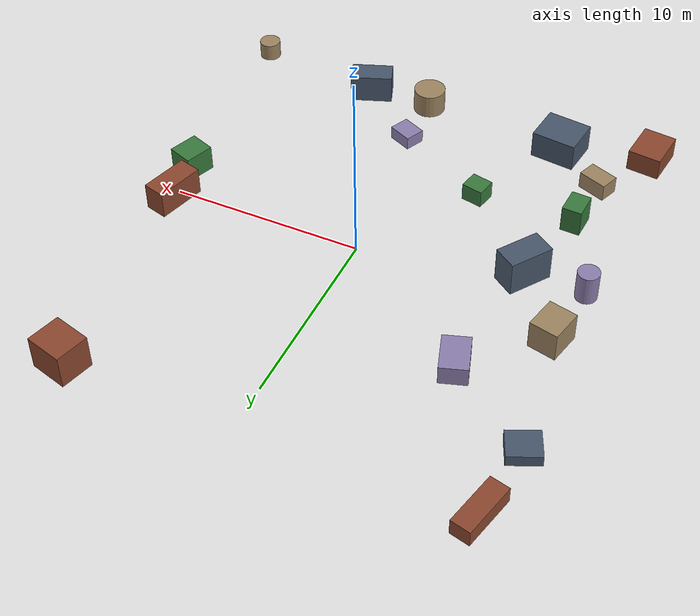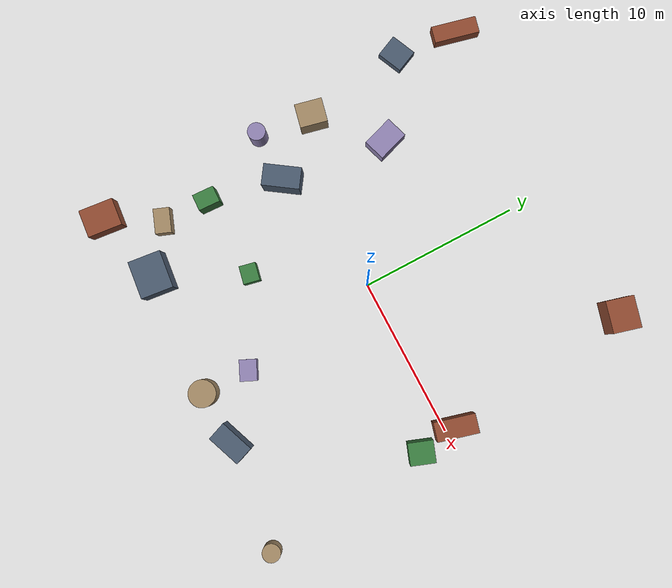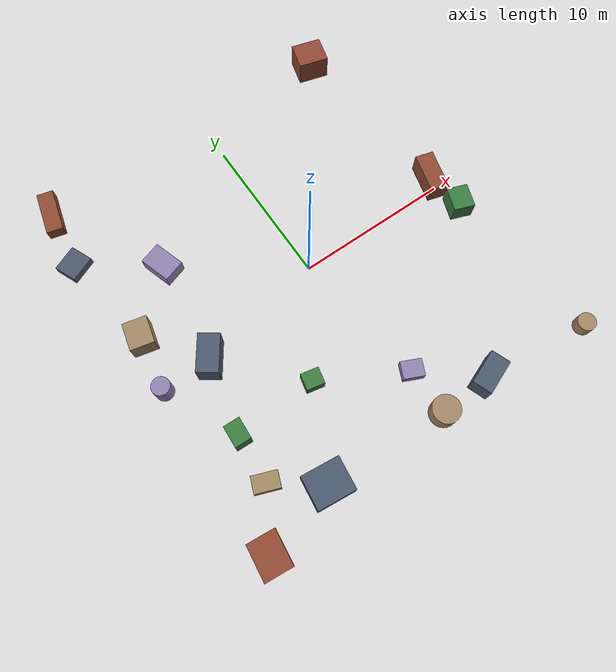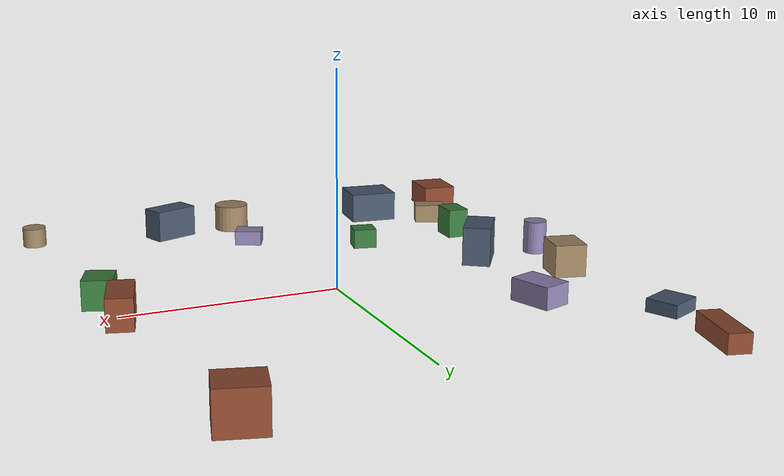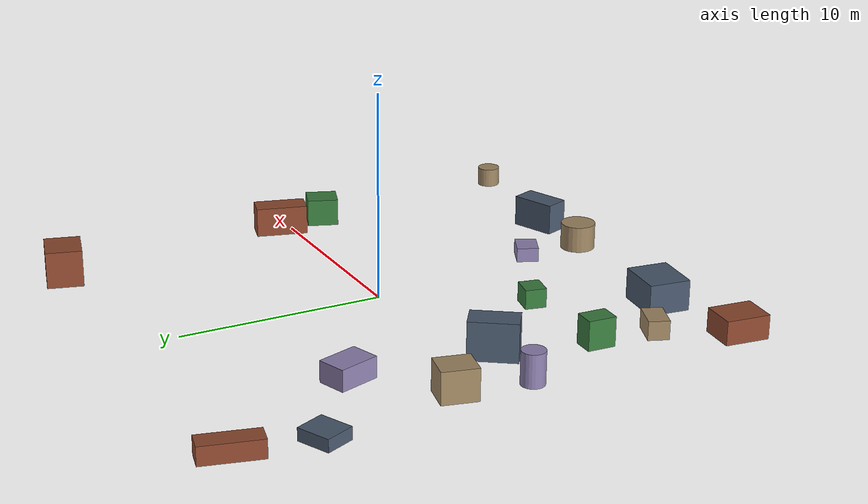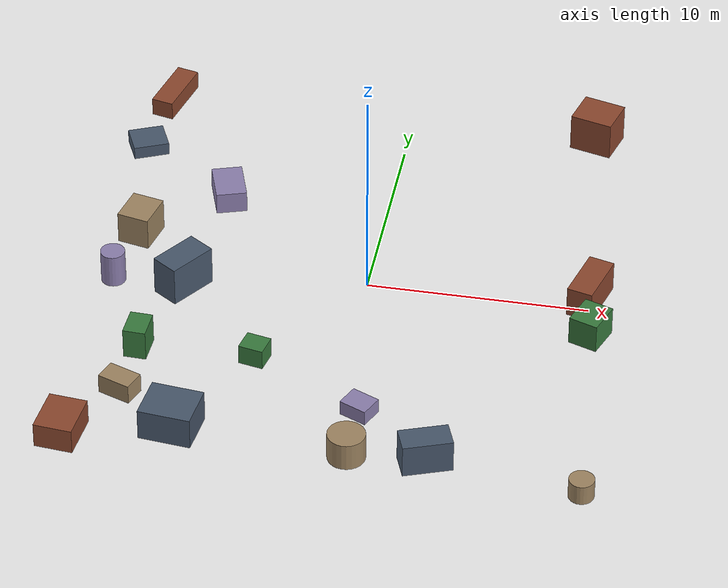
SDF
<sdf version="1.10">
 <world name="robotx_task1_uav_view">
  <gravity>0 0 -9.81</gravity>
  <physics name="physics" type="ode">
   <max_step_size>0.002</max_step_size>
   <real_time_factor>1.0</real_time_factor>
  </physics>
  <scene>
   <ambient>0.22 0.20 0.18 1.0</ambient>
   <background>0.74 0.55 0.44 1.0</background>
   <shadows>true</shadows>
   <grid>false</grid>
  </scene>
  <light name="sun" type="directional">
   <pose>0 0 300 0 0 0</pose>
   <diffuse>0.95 0.74 0.56 1.0</diffuse>
   <specular>1.00 0.87 0.71 1.0</specular>
   <direction>-0.40 0.20 -0.88</direction>
   <attenuation>
    <range>2500</range>
    <constant>0.85</constant>
    <linear>0.001</linear>
    <quadratic>0.00005</quadratic>
   </attenuation>
  </light>
  <plugin filename="gz-sim-physics-system" name="gz::sim::systems::Physics"/>
  <plugin filename="gz-sim-user-commands-system" name="gz::sim::systems::UserCommands"/>
  <plugin filename="gz-sim-scene-broadcaster-system" name="gz::sim::systems::SceneBroadcaster"/>
  <plugin filename="gz-sim-sensors-system" name="gz::sim::systems::Sensors">
   <render_engine>ogre2</render_engine>
  </plugin>
  <model name="scene_clutter_box_000">
   <static>true</static>
   <pose>-10.804 1.817 0.787 0 0 2.920331</pose>
   <link name="link">
    <visual name="v">
     <geometry><box><size>1.488 1.715 1.534</size></box></geometry>
     <material><ambient>0.45 0.38 0.32 1.0</ambient><diffuse>0.62 0.52 0.38 1.0</diffuse></material>
    </visual>
   </link>
  </model>
  <model name="scene_clutter_box_001">
   <static>true</static>
   <pose>-6.556 -11.242 0.762 0 0 1.457861</pose>
   <link name="link">
    <visual name="v">
     <geometry><box><size>2.021 2.357 1.484</size></box></geometry>
     <material><ambient>0.18 0.22 0.28 1.0</ambient><diffuse>0.28 0.34 0.42 1.0</diffuse></material>
    </visual>
   </link>
  </model>
  <model name="scene_clutter_box_002">
   <static>true</static>
   <pose>-11.134 -12.436 0.604 0 0 -1.673038</pose>
   <link name="link">
    <visual name="v">
     <geometry><box><size>2.149 1.725 1.168</size></box></geometry>
     <material><ambient>0.35 0.16 0.12 1.0</ambient><diffuse>0.55 0.28 0.18 1.0</diffuse></material>
    </visual>
   </link>
  </model>
  <model name="scene_clutter_box_003">
   <static>true</static>
   <pose>-9.132 -6.211 0.740 0 0 1.528248</pose>
   <link name="link">
    <visual name="v">
     <geometry><box><size>1.357 1.018 1.440</size></box></geometry>
     <material><ambient>0.12 0.30 0.14 1.0</ambient><diffuse>0.22 0.48 0.24 1.0</diffuse></material>
    </visual>
   </link>
  </model>
  <model name="scene_clutter_cyl_004">
   <static>true</static>
   <pose>-11.303 -1.642 0.844 0 0 -2.697050</pose>
   <link name="link">
    <visual name="v">
     <geometry><cylinder><radius>0.555</radius><length>1.588</length></cylinder></geometry>
     <material><ambient>0.40 0.35 0.50 1.0</ambient><diffuse>0.55 0.50 0.68 1.0</diffuse></material>
    </visual>
   </link>
  </model>
  <model name="scene_clutter_box_005">
   <static>true</static>
   <pose>-9.284 -9.231 0.481 0 0 1.205233</pose>
   <link name="link">
    <visual name="v">
     <geometry><box><size>0.996 1.546 0.921</size></box></geometry>
     <material><ambient>0.45 0.38 0.32 1.0</ambient><diffuse>0.62 0.52 0.38 1.0</diffuse></material>
    </visual>
   </link>
  </model>
  <model name="scene_clutter_box_006">
   <static>true</static>
   <pose>-11.914 8.359 0.322 0 0 -1.151727</pose>
   <link name="link">
    <visual name="v">
     <geometry><box><size>1.461 1.645 0.604</size></box></geometry>
     <material><ambient>0.18 0.22 0.28 1.0</ambient><diffuse>0.28 0.34 0.42 1.0</diffuse></material>
    </visual>
   </link>
  </model>
  <model name="scene_clutter_box_007">
   <static>true</static>
   <pose>9.984 0.618 0.749 0 0 -1.835385</pose>
   <link name="link">
    <visual name="v">
     <geometry><box><size>2.558 1.180 1.458</size></box></geometry>
     <material><ambient>0.35 0.16 0.12 1.0</ambient><diffuse>0.55 0.28 0.18 1.0</diffuse></material>
    </visual>
   </link>
  </model>
  <model name="scene_clutter_box_008">
   <static>true</static>
   <pose>10.336 -1.879 0.700 0 0 -1.920815</pose>
   <link name="link">
    <visual name="v">
     <geometry><box><size>1.545 1.352 1.360</size></box></geometry>
     <material><ambient>0.12 0.30 0.14 1.0</ambient><diffuse>0.22 0.48 0.24 1.0</diffuse></material>
    </visual>
   </link>
  </model>
  <model name="scene_clutter_box_009">
   <static>true</static>
   <pose>-7.388 5.145 0.534 0 0 -2.823185</pose>
   <link name="link">
    <visual name="v">
     <geometry><box><size>1.401 2.019 1.028</size></box></geometry>
     <material><ambient>0.40 0.35 0.50 1.0</ambient><diffuse>0.55 0.50 0.68 1.0</diffuse></material>
    </visual>
   </link>
  </model>
  <model name="scene_clutter_cyl_010">
   <static>true</static>
   <pose>1.181 -11.753 0.696 0 0 -0.592060</pose>
   <link name="link">
    <visual name="v">
     <geometry><cylinder><radius>0.842</radius><length>1.292</length></cylinder></geometry>
     <material><ambient>0.45 0.38 0.32 1.0</ambient><diffuse>0.62 0.52 0.38 1.0</diffuse></material>
    </visual>
   </link>
  </model>
  <model name="scene_clutter_box_011">
   <static>true</static>
   <pose>-8.102 -1.576 0.950 0 0 -0.600816</pose>
   <link name="link">
    <visual name="v">
     <geometry><box><size>1.324 2.308 1.860</size></box></geometry>
     <material><ambient>0.18 0.22 0.28 1.0</ambient><diffuse>0.28 0.34 0.42 1.0</diffuse></material>
    </visual>
   </link>
  </model>
  <model name="scene_clutter_box_012">
   <static>true</static>
   <pose>-11.478 12.247 0.456 0 0 1.335687</pose>
   <link name="link">
    <visual name="v">
     <geometry><box><size>2.831 1.034 0.873</size></box></geometry>
     <material><ambient>0.35 0.16 0.12 1.0</ambient><diffuse>0.55 0.28 0.18 1.0</diffuse></material>
    </visual>
   </link>
  </model>
  <model name="scene_clutter_box_013">
   <static>true</static>
   <pose>-3.938 -6.020 0.492 0 0 2.933286</pose>
   <link name="link">
    <visual name="v">
     <geometry><box><size>1.124 1.020 0.943</size></box></geometry>
     <material><ambient>0.12 0.30 0.14 1.0</ambient><diffuse>0.22 0.48 0.24 1.0</diffuse></material>
    </visual>
   </link>
  </model>
  <model name="scene_clutter_box_014">
   <static>true</static>
   <pose>1.204 -8.787 0.369 0 0 -0.428260</pose>
   <link name="link">
    <visual name="v">
     <geometry><box><size>1.306 1.057 0.698</size></box></geometry>
     <material><ambient>0.40 0.35 0.50 1.0</ambient><diffuse>0.55 0.50 0.68 1.0</diffuse></material>
    </visual>
   </link>
  </model>
  <model name="scene_clutter_cyl_015">
   <static>true</static>
   <pose>11.366 -12.438 0.521 0 0 1.629596</pose>
   <link name="link">
    <visual name="v">
     <geometry><cylinder><radius>0.562</radius><length>0.941</length></cylinder></geometry>
     <material><ambient>0.45 0.38 0.32 1.0</ambient><diffuse>0.62 0.52 0.38 1.0</diffuse></material>
    </visual>
   </link>
  </model>
  <model name="scene_clutter_box_016">
   <static>true</static>
   <pose>4.554 -11.578 0.784 0 0 1.929314</pose>
   <link name="link">
    <visual name="v">
     <geometry><box><size>1.210 2.211 1.528</size></box></geometry>
     <material><ambient>0.18 0.22 0.28 1.0</ambient><diffuse>0.28 0.34 0.42 1.0</diffuse></material>
    </visual>
   </link>
  </model>
  <model name="scene_clutter_box_017">
   <static>true</static>
   <pose>8.731 12.508 0.920 0 0 2.878120</pose>
   <link name="link">
    <visual name="v">
     <geometry><box><size>1.974 1.740 1.800</size></box></geometry>
     <material><ambient>0.35 0.16 0.12 1.0</ambient><diffuse>0.55 0.28 0.18 1.0</diffuse></material>
    </visual>
   </link>
  </model>
  <model name="uav_dataset_camera">
   <static>false</static>
   <pose>0 0 26 0 0 0</pose>
   <plugin filename="librobotx_overhead_motion_plugin.dylib" name="robotx::OverheadMotionPlugin">
    <radius_x_m>12.03658</radius_x_m>
    <radius_y_m>11.08842</radius_y_m>
    <angular_speed_rad_s>0.061463</angular_speed_rad_s>
    <phase_rad>4.388127</phase_rad>
    <z_wobble_m>0.02817</z_wobble_m>
    <z_wobble_hz>0.04922</z_wobble_hz>
    <z_wobble_phase_rad>4.148306</z_wobble_phase_rad>
   </plugin>
   <link name="camera_link">
    <gravity>false</gravity>
    <sensor name="top_down_rgb" type="camera">
     <always_on>true</always_on>
     <update_rate>20</update_rate>
     <pose>0 0 0 0 1.57079632679 0</pose>
     <camera>
      <horizontal_fov>1.05</horizontal_fov>
      <image><width>1920</width><height>1080</height><format>R8G8B8</format></image>
      <clip><near>0.2</near><far>600</far></clip>
     </camera>
     <topic>/robotx/uav/camera/image_raw</topic>
     <visualize>true</visualize>
    </sensor>
   </link>
  </model>
 </world>
</sdf>
